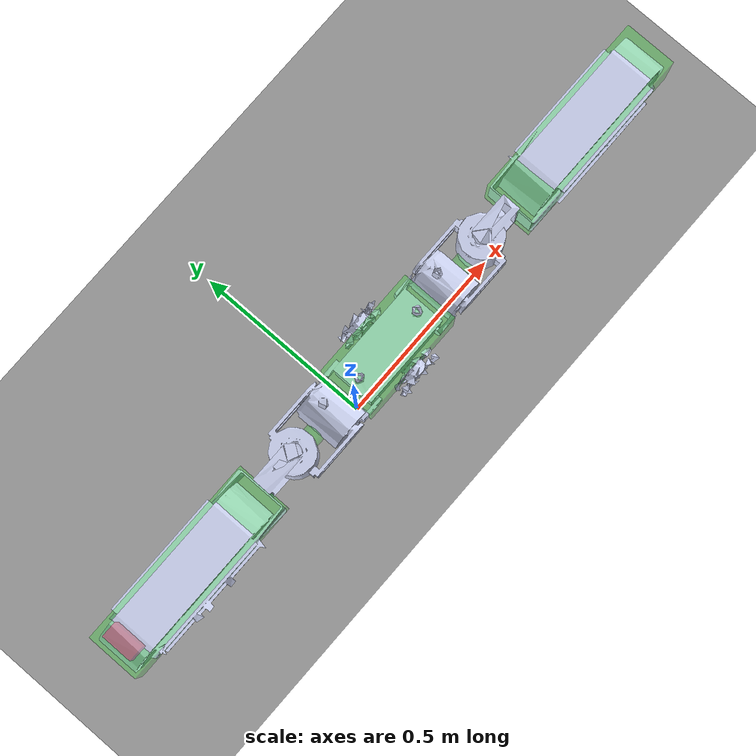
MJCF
<mujoco model="snake_scene_fixed_slider">
  <compiler angle="radian"/>
  <option timestep="0.001" gravity="0 0 -9.81"/>

  <asset>
    <texture name="skybox" type="skybox" builtin="gradient" rgb1="0.4 0.6 0.8" rgb2="0 0 0" width="800" height="800"/>
    <texture name="grid_tex" type="2d" builtin="checker" width="512" height="512" rgb1="0.7 0.7 0.7" rgb2="0.5 0.5 0.5"/>
    <material name="grid_mat" texture="grid_tex" texrepeat="10 10" reflectance="0.2"/>
  </asset>

  <worldbody>
    <light directional="true" diffuse="0.8 0.8 0.8" specular="0.2 0.2 0.2" pos="0 0 5" dir="0 0 -1"/>
    <geom name="floor" type="plane" pos="0 0 0" size="5 5 0.1" material="grid_mat" friction="0 0 0" condim="1" contype="1" conaffinity="1" group="0"/>
  </worldbody>

  <include file="snake_robot_tracks_slider.xml"/>
</mujoco>

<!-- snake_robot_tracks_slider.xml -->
<mujoco model="snake_robot_surfacevel_slider">
  <compiler angle="radian"/>
  <option timestep="0.001" gravity="0 0 -9.81" solver="Newton" iterations="50" integrator="implicitfast" cone="elliptic"/>

  <default>
    <default class="track_pad">
      <!-- Collision bit 2 keeps automatic floor contact disabled (floor uses bit 1) while allowing generated training obstacles with bits 1|2 to contact the moving pads. -->
      <geom type="box" rgba="1 0.5 0 0.35" friction="1.5 0.005 0.0001" condim="3" surfacevel="0 0 0 0 0 0" contype="2" conaffinity="2" density="0" group="3"/>
    </default>
  </default>

  <asset>
    <mesh name="base_link" content_type="model/stl" file="../meshes/base_link.STL"/>
    <mesh name="front_link" content_type="model/stl" file="../meshes/front_link.STL"/>
    <mesh name="front_track" content_type="model/stl" file="../meshes/front_track.STL"/>
    <mesh name="back_link" content_type="model/stl" file="../meshes/back_link.STL"/>
    <mesh name="back_track" content_type="model/stl" file="../meshes/back_track.STL"/>
  </asset>

  <worldbody>
    <body name="base_link" pos="0 0 0.5" quat="1 0 0 0">
      <freejoint name="floating_base"/>
      <geom type="mesh" rgba="0.792157 0.819608 0.933333 1" mesh="base_link" contype="0" conaffinity="0" group="1"/>
      <geom name="base_link_collision" type="box" pos="0.120 0 -0.040" size="0.145 0.075 0.060" rgba="0 1 0 0.25" density="0" friction="0.15 0 0" condim="3" contype="1" conaffinity="1" group="2"/>
      <geom name="base_link_pad" type="box" pos="0.125 0.0 -0.1" size="0.060 0.060 0.010" rgba="0 0 1 0.25" density="0" friction="0.05 0 0" condim="3" contype="0" conaffinity="0" group="3"/>

      <body name="front_link" pos="-0.0765 -0.0745 -0.0465" quat="0.707105 0.707108 0 0">
        <inertial pos="-0.10865 0.017803 -0.076529" quat="0.497061 0.497362 0.502973 0.502573" mass="0.63341" diaginertia="0.00101974 0.00090037 0.000736405"/>
        <joint name="front_joint1" pos="0 0 0" axis="0 0 1" range="-3.14 3.14" actuatorfrcrange="-100 100" damping="0.8" armature="0.02"/>
        <geom type="mesh" rgba="0.79216 0.81961 0.93333 1" mesh="front_link" contype="0" conaffinity="0" group="1"/>
        <geom name="front_link_collision" type="capsule" fromto="-0.025 -0.015 -0.074 -0.102 -0.015 -0.074" size="0.025" rgba="0 1 0 0.25" density="0" friction="0.15 0 0" condim="3" contype="1" conaffinity="1" group="2"/>

        <body name="front_track" pos="-0.12694 -0.047652 -0.0745" quat="0.707105 -0.707108 0 0">
          <inertial pos="-0.33739 -0.00064039 0.05406" quat="0.49988 0.500306 0.499664 0.500149" mass="3.1288" diaginertia="0.025033 0.022341 0.0080057"/>
          <joint name="front_joint2" pos="0 0 0" axis="0 0 -1" range="-3.14 3.14" actuatorfrcrange="-100 100" damping="0.8" armature="0.02"/>
          <geom type="mesh" rgba="0.79216 0.81961 0.93333 1" mesh="front_track" contype="0" conaffinity="0" group="1"/>
          <geom name="front_track_collision" type="box" pos="-0.350 0.0 0.060" size="0.250 0.068 0.065" rgba="0 1 0 0.25" density="0" friction="0.15 0 0" condim="3" contype="1" conaffinity="1" group="2"/>

          <!-- Fixed pads. Positive local +X surface velocity is the bottom-belt motion for robot-forward travel (robot front is track local -X). -->
          <geom name="front_track_pad1_geom" class="track_pad" pos="-0.50 0 -0.005" size="0.075 0.060 0.010"/>
          <geom name="front_track_pad2_geom" class="track_pad" pos="-0.35 0 -0.005" size="0.075 0.060 0.010"/>
          <geom name="front_track_pad3_geom" class="track_pad" pos="-0.20 0 -0.005" size="0.075 0.060 0.010"/>

          <body name="lidar" pos="-0.55 0.0 0.17">
            <site name="lidar_site" type="box" pos="0 0 0" quat="0 0 0 1" size="0.02 0.04 0.03" rgba="1 0 0 0.25"/>
          </body>
        </body>
      </body>

      <body name="back_link" pos="0.3165 -0.0745 -0.0465" quat="0.707105 0.707108 0 0">
        <inertial pos="0.10621 0.029044 -0.076537" quat="0.47619 0.476017 0.522731 0.522879" mass="0.63341" diaginertia="0.00101967 0.00090044 0.000736344"/>
        <joint name="back_joint1" pos="0 0 0" axis="0 0 1" range="-3.14 3.14" actuatorfrcrange="-100 100" damping="0.8" armature="0.02"/>
        <geom type="mesh" rgba="0.79216 0.81961 0.93333 1" mesh="back_link" quat="0.998713 0 0 -0.050714" contype="0" conaffinity="0" group="1"/>
        <geom name="back_link_collision" type="capsule" fromto="0.025 -0.015 -0.074 0.102 -0.015 -0.074" size="0.025" rgba="0 1 0 0.25" density="0" friction="0.15 0 0" condim="3" contype="1" conaffinity="1" group="2"/>

        <body name="back_track" pos="0.12694 -0.047652 -0.0745" quat="0.707105 -0.707108 0 0">
          <inertial pos="0.32501 -0.084885 0.054393" quat="0.559637 0.559644 0.432211 0.432202" mass="2.8466" diaginertia="0.0243598 0.02133 0.00757138"/>
          <joint name="back_joint2" pos="0 0 0" axis="0 0 -1" range="-3.14 3.14" actuatorfrcrange="-100 100" damping="0.8" armature="0.02"/>
          <geom type="mesh" rgba="0.79216 0.81961 0.93333 1" mesh="back_track" quat="0.991844 0 0 0.127459" contype="0" conaffinity="0" group="1"/>
          <geom name="back_track_collision" type="box" pos="0.350 0.0 0.060" size="0.250 0.068 0.065" rgba="0 1 0 0.25" density="0" friction="0.15 0 0" condim="3" contype="1" conaffinity="1" group="2"/>

          <geom name="back_track_pad1_geom" class="track_pad" pos="0.50 0 -0.005" size="0.075 0.060 0.010"/>
          <geom name="back_track_pad2_geom" class="track_pad" pos="0.35 0 -0.005" size="0.075 0.060 0.010"/>
          <geom name="back_track_pad3_geom" class="track_pad" pos="0.20 0 -0.005" size="0.075 0.060 0.010"/>
        </body>
      </body>
    </body>
  </worldbody>

  <contact>
    <exclude name="exclude_base_front_link" body1="base_link" body2="front_link"/>
    <exclude name="exclude_front_link_track" body1="front_link" body2="front_track"/>
    <exclude name="exclude_base_back_link" body1="base_link" body2="back_link"/>
    <exclude name="exclude_back_link_track" body1="back_link" body2="back_track"/>

    <!-- Structural collision shapes can touch the floor but do not add tangential traction. -->
    <pair name="base_ground_contact" geom1="floor" geom2="base_link_collision" condim="3" friction="0.15 0.0 0 0 0" solref="0.01 1" solimp="0.95 0.99 0.001 0.5 2"/>
    <pair name="front_link_ground_contact" geom1="floor" geom2="front_link_collision" condim="3" friction="0.15 0.0 0 0 0" solref="0.01 1" solimp="0.95 0.99 0.001 0.5 2"/>
    <pair name="front_track_shell_ground_contact" geom1="floor" geom2="front_track_collision" condim="3" friction="0.15 0.0 0 0 0" solref="0.01 1" solimp="0.95 0.99 0.001 0.5 2"/>
    <pair name="back_link_ground_contact" geom1="floor" geom2="back_link_collision" condim="3" friction="0.15 0.0 0 0 0" solref="0.01 1" solimp="0.95 0.99 0.001 0.5 2"/>
    <pair name="back_track_shell_ground_contact" geom1="floor" geom2="back_track_collision" condim="3" friction="0.15 0.0 0 0 0" solref="0.01 1" solimp="0.95 0.99 0.001 0.5 2"/>
    <pair name="base_pad_ground_contact" geom1="floor" geom2="base_link_pad" condim="3" friction="0.1 0.0 0 0 0" solref="0.01 1" solimp="0.95 0.99 0.001 0.5 2"/>

    <!-- MuJoCo computes all tangential friction caused by surfacevel. Explicit pairs preserve anisotropic sliding friction. -->
    <pair name="front_track_ground_1" geom1="floor" geom2="front_track_pad1_geom" condim="3" friction="1.5 1.0 0 0 0" solref="0.01 1" solimp="0.95 0.99 0.001 0.5 2"/>
    <pair name="front_track_ground_2" geom1="floor" geom2="front_track_pad2_geom" condim="3" friction="1.5 1.0 0 0 0" solref="0.01 1" solimp="0.95 0.99 0.001 0.5 2"/>
    <pair name="front_track_ground_3" geom1="floor" geom2="front_track_pad3_geom" condim="3" friction="1.5 1.0 0 0 0" solref="0.01 1" solimp="0.95 0.99 0.001 0.5 2"/>
    <pair name="back_track_ground_1" geom1="floor" geom2="back_track_pad1_geom" condim="3" friction="1.5 1.0 0 0 0" solref="0.01 1" solimp="0.95 0.99 0.001 0.5 2"/>
    <pair name="back_track_ground_2" geom1="floor" geom2="back_track_pad2_geom" condim="3" friction="1.5 1.0 0 0 0" solref="0.01 1" solimp="0.95 0.99 0.001 0.5 2"/>
    <pair name="back_track_ground_3" geom1="floor" geom2="back_track_pad3_geom" condim="3" friction="1.5 1.0 0 0 0" solref="0.01 1" solimp="0.95 0.99 0.001 0.5 2"/>
  </contact>

  <!-- The tracks need no hinge DOF or MuJoCo actuator. Their moving surface is driven through geom_surfacevel at runtime. -->
  <actuator>
    <motor name="f1_motor" joint="front_joint1" ctrlrange="-36 36" ctrllimited="true"/>
    <motor name="f2_motor" joint="front_joint2" ctrlrange="-36 36" ctrllimited="true"/>
    <motor name="b1_motor" joint="back_joint1" ctrlrange="-36 36" ctrllimited="true"/>
    <motor name="b2_motor" joint="back_joint2" ctrlrange="-36 36" ctrllimited="true"/>
  </actuator>
</mujoco>
